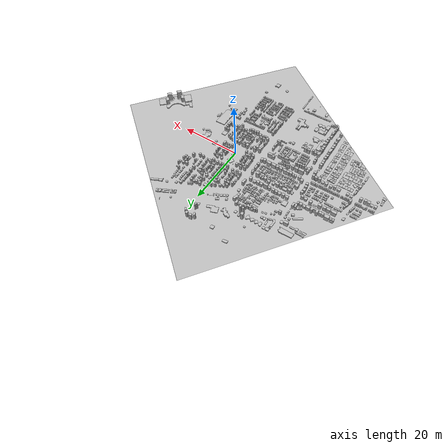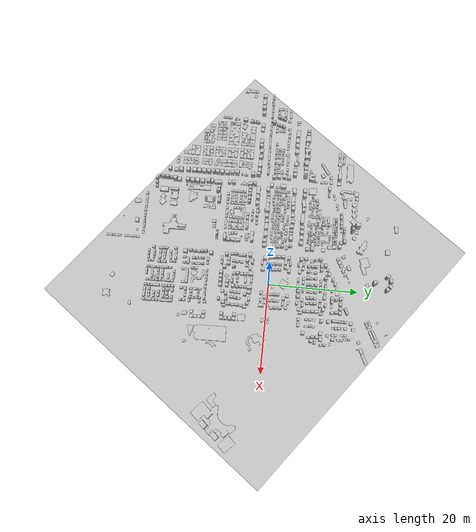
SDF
<?xml version="1.0" ?>
<sdf version="1.6">
   <world name="default">
    <scene>
      <ambient>0.5 0.5 0.5 1</ambient>
      <background>0.15 0.15 0.15 1</background>
      <shadows>0</shadows>
      <sky>
	<clouds>
	  <speed>12</speed>
	</clouds>
      </sky>
      <fog>
	<type>linear</type>
	<start>10</start>
	<end>500</end>
	<density>1</density>
      </fog>
    </scene>
      <include>
         <uri>model://sun</uri>
      </include>
      <include>
         <uri>model://abu_dhabi_model_scaled</uri>
         <pose>-3 -3 3.5 0 0 -0.65</pose>
      </include>
      <include>
    <uri>model://virtual_cam</uri>
  </include>

    <gui fullscreen='0'>
      <camera name='user_camera'>
        <pose>-10 10 10 0 0 0</pose>
        <view_controller>orbit</view_controller>
        <projection_type>perspective</projection_type>
        <track_visual>
          <name>virtual_cam</name>
          <follow>true</follow>
          <xyz>-10 10 10 </xyz>
          <static>true</static>
          <min_dist>1.0</min_dist>
          <max_dist>100.0</max_dist>
        </track_visual>
      </camera>
    </gui>
   </world>
</sdf>

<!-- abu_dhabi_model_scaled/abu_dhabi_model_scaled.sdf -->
<sdf version="1.5">
  <model name="abu_dhabi_model_scaled">
    <pose>0 0 0 0 0 0</pose>
    <static>true</static>
    <link name="buildings">
      <visual name="visual">
        <geometry>
          <mesh><uri>model://abu_dhabi_model_scaled/media/buildings.dae</uri></mesh>
        </geometry>
        <pose>0 0 -3.5 0 0 0</pose>
      </visual>
      <collision name="collision">
        <geometry>
          <mesh><uri>model://abu_dhabi_model_scaled/media/buildings.dae</uri></mesh>
        </geometry>
        <pose>0 0 -3.5 0 0 0</pose>
      </collision>
    </link>
    <link name="terrain">
      <visual name="visual">
        <geometry>
          <mesh><uri>model://abu_dhabi_model_scaled/media/terrain.dae</uri></mesh>
        </geometry>
        <pose>0 0 -3.5 0 0 0</pose>
      </visual>
      <collision name="collision">
        <geometry>
          <mesh><uri>model://abu_dhabi_model_scaled/media/terrain.dae</uri></mesh>
        </geometry>
        <pose>0 0 -3.5 0 0 0</pose>
      </collision>
    </link>
  </model>
</sdf>

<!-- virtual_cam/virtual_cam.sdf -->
<sdf version="1.6">
  <model name="virtual_cam">
    <pose>0 0 0 0 0 0</pose>
    <static>true</static>
    <link name="link">
      <visual name="visual">
        <geometry>
          <box>
            <size>0.01 0.01 0.01</size>
          </box>
        </geometry>
      </visual>
      <sensor name="camera" type="camera">
		<pose>0 0.05 0 0 0 0</pose>
        <camera name="__default__">
          <horizontal_fov>1.047</horizontal_fov>
          <image>
            <width>960</width>
            <height>1080</height>
          </image>
          <clip>
            <near>0.1</near>
            <far>100</far>
          </clip>
          <lens>
            <type>custom</type>
            <custom_function>
              <c1>1.05</c1>
              <c2>4</c2>
              <f>1</f>
              <fun>tan</fun>
            </custom_function>
            <scale_to_hfov>1</scale_to_hfov>
            <cutoff_angle>3.1415</cutoff_angle>
            <env_texture_size>1080</env_texture_size>
          </lens>
        </camera>
        <always_on>1</always_on>
        <update_rate>60</update_rate>
        <visualize>1</visualize>
        <plugin name="camera_plugin" filename="libgazebo_ros_camera.so">
          <robotNamespace/>
          <alwaysOn>true</alwaysOn>
          <imageTopicName>image_raw</imageTopicName>
          <cameraInfoTopicName>camera_info</cameraInfoTopicName>
          <updateRate>60.0</updateRate>
          <cameraName>left</cameraName>
          <frameName>/robot_camera_link</frameName>
          <CxPrime>320.5</CxPrime>
          <Cx>320.5</Cx>
          <Cy>240.5</Cy>
          <hackBaseline>0</hackBaseline>
          <focalLength>277.191356</focalLength>
          <distortionK1>0.0</distortionK1>
          <distortionK2>0.0</distortionK2>
          <distortionK3>0.0</distortionK3>
          <distortionT1>0.0</distortionT1>
          <distortionT2>0.0</distortionT2>
        </plugin>
        <!-- GStreamer camera plugin (needs a lot of CPU! Consider lowering the
             camera image size) -->
      </sensor>

      <sensor name="camera2" type="camera">
		<pose>0 -0.05 0 0 0 0</pose>
        <camera name="__default__">
          <horizontal_fov>1.047</horizontal_fov>
          <image>
            <width>960</width>
            <height>1080</height>
          </image>
          <clip>
            <near>0.1</near>
            <far>100</far>
          </clip>
          <lens>
            <type>custom</type>
            <custom_function>
              <c1>1.05</c1>
              <c2>4</c2>
              <f>1</f>
              <fun>tan</fun>
            </custom_function>
            <scale_to_hfov>1</scale_to_hfov>
            <cutoff_angle>3.1415</cutoff_angle>
            <env_texture_size>1080</env_texture_size>
          </lens>
        </camera>
        <always_on>1</always_on>
        <update_rate>60</update_rate>
        <visualize>1</visualize>
        <plugin name="camera_plugin" filename="libgazebo_ros_camera.so">
          <robotNamespace/>
          <alwaysOn>true</alwaysOn>
          <imageTopicName>image_raw</imageTopicName>
          <cameraInfoTopicName>camera_info</cameraInfoTopicName>
          <updateRate>60.0</updateRate>
          <cameraName>right</cameraName>
          <frameName>/robot_camera_link</frameName>
          <CxPrime>320.5</CxPrime>
          <Cx>320.5</Cx>
          <Cy>240.5</Cy>
          <hackBaseline>0</hackBaseline>
          <focalLength>277.191356</focalLength>
          <distortionK1>0.0</distortionK1>
          <distortionK2>0.0</distortionK2>
          <distortionK3>0.0</distortionK3>
          <distortionT1>0.0</distortionT1>
          <distortionT2>0.0</distortionT2>
        </plugin>
        <!-- GStreamer camera plugin (needs a lot of CPU! Consider lowering the
             camera image size) -->
      </sensor>

      <self_collide>0</self_collide>
      <kinematic>1</kinematic>
    </link>
	<plugin name="virtual_cam" filename="libgazebo_model_pose.so">
		<topic>/qualisys_node/vr/pose</topic>
	</plugin>
  </model>
</sdf>
